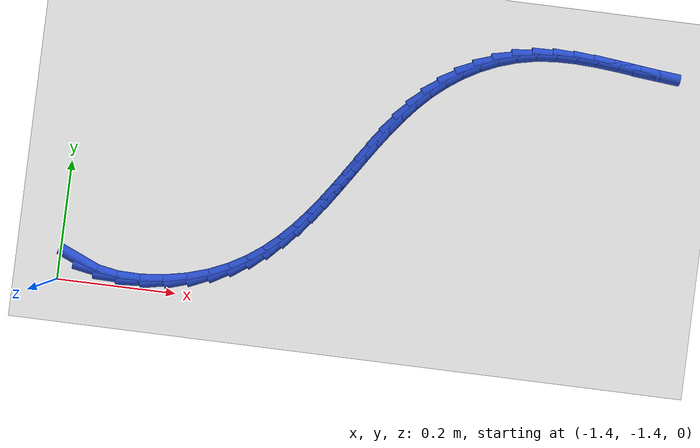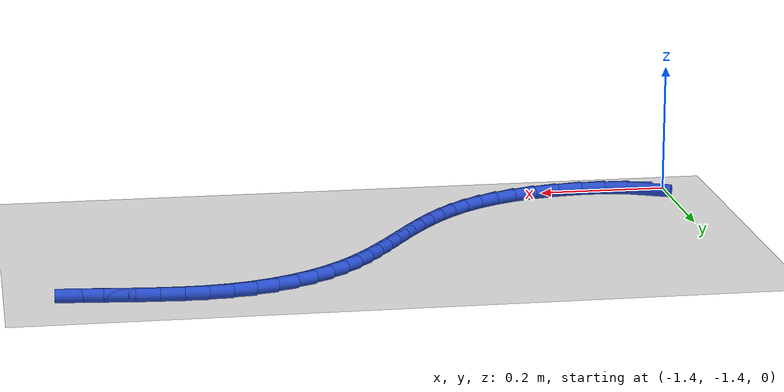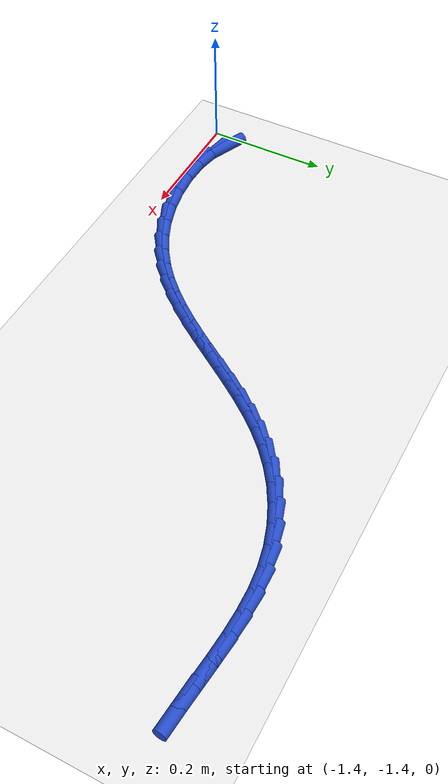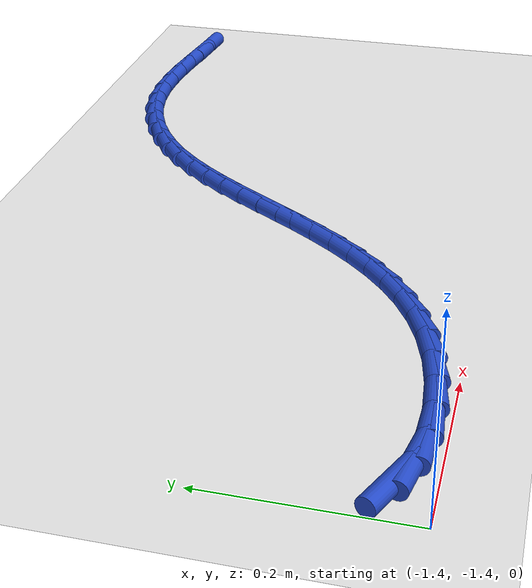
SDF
<sdf version="1.6">
 <world name="default">
  <model name="ground_plane">
   <static>1</static>
   <link name="link">
    <collision name="collision">
     <geometry><plane><normal>0 0 1</normal><size>100 100</size></plane></geometry>
     <surface><friction><ode><mu>100</mu><mu2>50</mu2></ode></friction></surface>
    </collision>
    <visual name="visual">
     <cast_shadows>0</cast_shadows>
     <geometry><plane><normal>0 0 1</normal><size>100 100</size></plane></geometry>
     <material>
      <script><uri>file://media/materials/scripts/gazebo.material</uri><name>Gazebo/WhiteGlow</name></script>
     </material>
    </visual>
   </link>
  </model>
  <model name="line">
   <link name="link_201">
    <pose>-1.3630901503434592 -1.3638697061320793 0.01 0 1.57 -0.4031667102607083</pose>
    <collision name="collision">
     <geometry><cylinder><radius>0.01</radius><length>0.08</length></cylinder></geometry>
    </collision>
    <visual name="visual">
     <material>
      <script><name>Gazebo/Blue</name><uri>file://media/materials/scripts/gazebo.material</uri></script>
     </material>
     <geometry><cylinder><radius>0.01</radius><length>0.08</length></cylinder></geometry>
    </visual>
   </link>
   <link name="link_202">
    <pose>-1.3343878084564367 -1.3761121449590048 0.01 0 1.57 -0.1751403704983456</pose>
    <collision name="collision">
     <geometry><cylinder><radius>0.01</radius><length>0.08</length></cylinder></geometry>
    </collision>
    <visual name="visual">
     <material>
      <script><name>Gazebo/Blue</name><uri>file://media/materials/scripts/gazebo.material</uri></script>
     </material>
     <geometry><cylinder><radius>0.01</radius><length>0.08</length></cylinder></geometry>
    </visual>
   </link>
   <link name="link_203">
    <pose>-1.2994607208328666 -1.3822926111460065 0.01 0 1.57 -0.020632780937613112</pose>
    <collision name="collision">
     <geometry><cylinder><radius>0.01</radius><length>0.08</length></cylinder></geometry>
    </collision>
    <visual name="visual">
     <material>
      <script><name>Gazebo/Blue</name><uri>file://media/materials/scripts/gazebo.material</uri></script>
     </material>
     <geometry><cylinder><radius>0.01</radius><length>0.08</length></cylinder></geometry>
    </visual>
   </link>
   <link name="link_204">
    <pose>-1.2607427728961045 -1.383091583464632 0.01 0 1.57 0.09706272305757051</pose>
    <collision name="collision">
     <geometry><cylinder><radius>0.01</radius><length>0.08</length></cylinder></geometry>
    </collision>
    <visual name="visual">
     <material>
      <script><name>Gazebo/Blue</name><uri>file://media/materials/scripts/gazebo.material</uri></script>
     </material>
     <geometry><cylinder><radius>0.01</radius><length>0.08</length></cylinder></geometry>
    </visual>
   </link>
   <link name="link_205">
    <pose>-1.220667850069504 -1.3791895406864254 0.01 0 1.57 0.20042583603466674</pose>
    <collision name="collision">
     <geometry><cylinder><radius>0.01</radius><length>0.08</length></cylinder></geometry>
    </collision>
    <visual name="visual">
     <material>
      <script><name>Gazebo/Blue</name><uri>file://media/materials/scripts/gazebo.material</uri></script>
     </material>
     <geometry><cylinder><radius>0.01</radius><length>0.08</length></cylinder></geometry>
    </visual>
   </link>
   <link name="link_206">
    <pose>-1.1816698377764232 -1.3712669615829334 0.01 0 1.57 0.30569391271122764</pose>
    <collision name="collision">
     <geometry><cylinder><radius>0.01</radius><length>0.08</length></cylinder></geometry>
    </collision>
    <visual name="visual">
     <material>
      <script><name>Gazebo/Blue</name><uri>file://media/materials/scripts/gazebo.material</uri></script>
     </material>
     <geometry><cylinder><radius>0.01</radius><length>0.08</length></cylinder></geometry>
    </visual>
   </link>
   <link name="link_207">
    <pose>-1.1458438031999547 -1.359960763688977 0.01 0 1.57 0.41542654613344265</pose>
    <collision name="collision">
     <geometry><cylinder><radius>0.01</radius><length>0.08</length></cylinder></geometry>
    </collision>
    <visual name="visual">
     <material>
      <script><name>Gazebo/Blue</name><uri>file://media/materials/scripts/gazebo.material</uri></script>
     </material>
     <geometry><cylinder><radius>0.01</radius><length>0.08</length></cylinder></geometry>
    </visual>
   </link>
   <link name="link_208">
    <pose>-1.1134501580478247 -1.3456719862661 0.01 0 1.57 0.5241736429138806</pose>
    <collision name="collision">
     <geometry><cylinder><radius>0.01</radius><length>0.08</length></cylinder></geometry>
    </collision>
    <visual name="visual">
     <material>
      <script><name>Gazebo/Blue</name><uri>file://media/materials/scripts/gazebo.material</uri></script>
     </material>
     <geometry><cylinder><radius>0.01</radius><length>0.08</length></cylinder></geometry>
    </visual>
   </link>
   <link name="link_209">
    <pose>-1.084131202211549 -1.3287221990787865 0.01 0 1.57 0.6273702994922504</pose>
    <collision name="collision">
     <geometry><cylinder><radius>0.01</radius><length>0.08</length></cylinder></geometry>
    </collision>
    <visual name="visual">
     <material>
      <script><name>Gazebo/Blue</name><uri>file://media/materials/scripts/gazebo.material</uri></script>
     </material>
     <geometry><cylinder><radius>0.01</radius><length>0.08</length></cylinder></geometry>
    </visual>
   </link>
   <link name="link_210">
    <pose>-1.0575287650760632 -1.3094329113993586 0.01 0 1.57 0.7210147814525111</pose>
    <collision name="collision">
     <geometry><cylinder><radius>0.01</radius><length>0.08</length></cylinder></geometry>
    </collision>
    <visual name="visual">
     <material>
      <script><name>Gazebo/Blue</name><uri>file://media/materials/scripts/gazebo.material</uri></script>
     </material>
     <geometry><cylinder><radius>0.01</radius><length>0.08</length></cylinder></geometry>
    </visual>
   </link>
   <link name="link_211">
    <pose>-1.0332846760262997 -1.2881256325001373 0.01 0 1.57 0.8021896978768858</pose>
    <collision name="collision">
     <geometry><cylinder><radius>0.01</radius><length>0.08</length></cylinder></geometry>
    </collision>
    <visual name="visual">
     <material>
      <script><name>Gazebo/Blue</name><uri>file://media/materials/scripts/gazebo.material</uri></script>
     </material>
     <geometry><cylinder><radius>0.01</radius><length>0.08</length></cylinder></geometry>
    </visual>
   </link>
   <link name="link_212">
    <pose>-1.011040764447194 -1.265121871653444 0.01 0 1.57 0.8691673241811841</pose>
    <collision name="collision">
     <geometry><cylinder><radius>0.01</radius><length>0.08</length></cylinder></geometry>
    </collision>
    <visual name="visual">
     <material>
      <script><name>Gazebo/Blue</name><uri>file://media/materials/scripts/gazebo.material</uri></script>
     </material>
     <geometry><cylinder><radius>0.01</radius><length>0.08</length></cylinder></geometry>
    </visual>
   </link>
   <link name="link_213">
    <pose>-0.9904388597236785 -1.2407431381315994 0.01 0 1.57 0.9211851683523427</pose>
    <collision name="collision">
     <geometry><cylinder><radius>0.01</radius><length>0.08</length></cylinder></geometry>
    </collision>
    <visual name="visual">
     <material>
      <script><name>Gazebo/Blue</name><uri>file://media/materials/scripts/gazebo.material</uri></script>
     </material>
     <geometry><cylinder><radius>0.01</radius><length>0.08</length></cylinder></geometry>
    </visual>
   </link>
   <link name="link_214">
    <pose>-0.9711207912406883 -1.215310941206925 0.01 0 1.57 0.9580852360317823</pose>
    <collision name="collision">
     <geometry><cylinder><radius>0.01</radius><length>0.08</length></cylinder></geometry>
    </collision>
    <visual name="visual">
     <material>
      <script><name>Gazebo/Blue</name><uri>file://media/materials/scripts/gazebo.material</uri></script>
     </material>
     <geometry><cylinder><radius>0.01</radius><length>0.08</length></cylinder></geometry>
    </visual>
   </link>
   <link name="link_215">
    <pose>-0.9527283883831569 -1.1891467901517419 0.01 0 1.57 0.9799721865948829</pose>
    <collision name="collision">
     <geometry><cylinder><radius>0.01</radius><length>0.08</length></cylinder></geometry>
    </collision>
    <visual name="visual">
     <material>
      <script><name>Gazebo/Blue</name><uri>file://media/materials/scripts/gazebo.material</uri></script>
     </material>
     <geometry><cylinder><radius>0.01</radius><length>0.08</length></cylinder></geometry>
    </visual>
   </link>
   <link name="link_216">
    <pose>-0.9349034805360176 -1.1625721942383707 0.01 0 1.57 0.9869622922317544</pose>
    <collision name="collision">
     <geometry><cylinder><radius>0.01</radius><length>0.08</length></cylinder></geometry>
    </collision>
    <visual name="visual">
     <material>
      <script><name>Gazebo/Blue</name><uri>file://media/materials/scripts/gazebo.material</uri></script>
     </material>
     <geometry><cylinder><radius>0.01</radius><length>0.08</length></cylinder></geometry>
    </visual>
   </link>
   <link name="link_217">
    <pose>-0.9172878970842056 -1.135908662739134 0.01 0 1.57 0.9790368442214583</pose>
    <collision name="collision">
     <geometry><cylinder><radius>0.01</radius><length>0.08</length></cylinder></geometry>
    </collision>
    <visual name="visual">
     <material>
      <script><name>Gazebo/Blue</name><uri>file://media/materials/scripts/gazebo.material</uri></script>
     </material>
     <geometry><cylinder><radius>0.01</radius><length>0.08</length></cylinder></geometry>
    </visual>
   </link>
   <link name="link_218">
    <pose>-0.8995234674126531 -1.1094777049263507 0.01 0 1.57 0.9559936640766555</pose>
    <collision name="collision">
     <geometry><cylinder><radius>0.01</radius><length>0.08</length></cylinder></geometry>
    </collision>
    <visual name="visual">
     <material>
      <script><name>Gazebo/Blue</name><uri>file://media/materials/scripts/gazebo.material</uri></script>
     </material>
     <geometry><cylinder><radius>0.01</radius><length>0.08</length></cylinder></geometry>
    </visual>
   </link>
   <link name="link_219">
    <pose>-0.8812520209062955 -1.083600830072344 0.01 0 1.57 0.917495400614432</pose>
    <collision name="collision">
     <geometry><cylinder><radius>0.01</radius><length>0.08</length></cylinder></geometry>
    </collision>
    <visual name="visual">
     <material>
      <script><name>Gazebo/Blue</name><uri>file://media/materials/scripts/gazebo.material</uri></script>
     </material>
     <geometry><cylinder><radius>0.01</radius><length>0.08</length></cylinder></geometry>
    </visual>
   </link>
   <link name="link_220">
    <pose>-0.8621153869500661 -1.058599547449434 0.01 0 1.57 0.8632266815567523</pose>
    <collision name="collision">
     <geometry><cylinder><radius>0.01</radius><length>0.08</length></cylinder></geometry>
    </collision>
    <visual name="visual">
     <material>
      <script><name>Gazebo/Blue</name><uri>file://media/materials/scripts/gazebo.material</uri></script>
     </material>
     <geometry><cylinder><radius>0.01</radius><length>0.08</length></cylinder></geometry>
    </visual>
   </link>
   <link name="link_221">
    <pose>-0.8417553949288992 -1.034795366329943 0.01 0 1.57 0.7931771670490835</pose>
    <collision name="collision">
     <geometry><cylinder><radius>0.01</radius><length>0.08</length></cylinder></geometry>
    </collision>
    <visual name="visual">
     <material>
      <script><name>Gazebo/Blue</name><uri>file://media/materials/scripts/gazebo.material</uri></script>
     </material>
     <geometry><cylinder><radius>0.01</radius><length>0.08</length></cylinder></geometry>
    </visual>
   </link>
   <link name="link_222">
    <pose>-0.8198138742277279 -1.0125097959861904 0.01 0 1.57 0.7082936814916077</pose>
    <collision name="collision">
     <geometry><cylinder><radius>0.01</radius><length>0.08</length></cylinder></geometry>
    </collision>
    <visual name="visual">
     <material>
      <script><name>Gazebo/Blue</name><uri>file://media/materials/scripts/gazebo.material</uri></script>
     </material>
     <geometry><cylinder><radius>0.01</radius><length>0.08</length></cylinder></geometry>
    </visual>
   </link>
   <link name="link_223">
    <pose>-0.7959437820969634 -0.9920634847737256 0.01 0 1.57 0.6154847410870234</pose>
    <collision name="collision">
     <geometry><cylinder><radius>0.01</radius><length>0.08</length></cylinder></geometry>
    </collision>
    <visual name="visual">
     <material>
      <script><name>Gazebo/Blue</name><uri>file://media/materials/scripts/gazebo.material</uri></script>
     </material>
     <geometry><cylinder><radius>0.01</radius><length>0.08</length></cylinder></geometry>
    </visual>
   </link>
   <link name="link_224">
    <pose>-0.7700550610812513 -0.9737571991623281 0.01 0 1.57 0.5200718488743716</pose>
    <collision name="collision">
     <geometry><cylinder><radius>0.01</radius><length>0.08</length></cylinder></geometry>
    </collision>
    <visual name="visual">
     <material>
      <script><name>Gazebo/Blue</name><uri>file://media/materials/scripts/gazebo.material</uri></script>
     </material>
     <geometry><cylinder><radius>0.01</radius><length>0.08</length></cylinder></geometry>
    </visual>
   </link>
   <link name="link_225">
    <pose>-0.7423152205777923 -0.957871778743256 0.01 0 1.57 0.4214136400182426</pose>
    <collision name="collision">
     <geometry><cylinder><radius>0.01</radius><length>0.08</length></cylinder></geometry>
    </collision>
    <visual name="visual">
     <material>
      <script><name>Gazebo/Blue</name><uri>file://media/materials/scripts/gazebo.material</uri></script>
     </material>
     <geometry><cylinder><radius>0.01</radius><length>0.08</length></cylinder></geometry>
    </visual>
   </link>
   <link name="link_226">
    <pose>-0.7129030141611108 -0.9446871931924287 0.01 0 1.57 0.31888938657900145</pose>
    <collision name="collision">
     <geometry><cylinder><radius>0.01</radius><length>0.08</length></cylinder></geometry>
    </collision>
    <visual name="visual">
     <material>
      <script><name>Gazebo/Blue</name><uri>file://media/materials/scripts/gazebo.material</uri></script>
     </material>
     <geometry><cylinder><radius>0.01</radius><length>0.08</length></cylinder></geometry>
    </visual>
   </link>
   <link name="link_227">
    <pose>-0.6819971954057313 -0.9344834121857658 0.01 0 1.57 0.21223773042530286</pose>
    <collision name="collision">
     <geometry><cylinder><radius>0.01</radius><length>0.08</length></cylinder></geometry>
    </collision>
    <visual name="visual">
     <material>
      <script><name>Gazebo/Blue</name><uri>file://media/materials/scripts/gazebo.material</uri></script>
     </material>
     <geometry><cylinder><radius>0.01</radius><length>0.08</length></cylinder></geometry>
    </visual>
   </link>
   <link name="link_228">
    <pose>-0.6497765178861807 -0.9275404053991875 0.01 0 1.57 0.10587350550050266</pose>
    <collision name="collision">
     <geometry><cylinder><radius>0.01</radius><length>0.08</length></cylinder></geometry>
    </collision>
    <visual name="visual">
     <material>
      <script><name>Gazebo/Blue</name><uri>file://media/materials/scripts/gazebo.material</uri></script>
     </material>
     <geometry><cylinder><radius>0.01</radius><length>0.08</length></cylinder></geometry>
    </visual>
   </link>
   <link name="link_229">
    <pose>-0.616443877052804 -0.9239981165584029 0.01 0 1.57 0.019330289288603995</pose>
    <collision name="collision">
     <geometry><cylinder><radius>0.01</radius><length>0.08</length></cylinder></geometry>
    </collision>
    <visual name="visual">
     <material>
      <script><name>Gazebo/Blue</name><uri>file://media/materials/scripts/gazebo.material</uri></script>
     </material>
     <geometry><cylinder><radius>0.01</radius><length>0.08</length></cylinder></geometry>
    </visual>
   </link>
   <link name="link_230">
    <pose>-0.5823156423610236 -0.9233383257276885 0.01 0 1.57 -0.04368362377098528</pose>
    <collision name="collision">
     <geometry><cylinder><radius>0.01</radius><length>0.08</length></cylinder></geometry>
    </collision>
    <visual name="visual">
     <material>
      <script><name>Gazebo/Blue</name><uri>file://media/materials/scripts/gazebo.material</uri></script>
     </material>
     <geometry><cylinder><radius>0.01</radius><length>0.08</length></cylinder></geometry>
    </visual>
   </link>
   <link name="link_231">
    <pose>-0.5477414931716671 -0.9248496112834761 0.01 0 1.57 -0.08548146832235498</pose>
    <collision name="collision">
     <geometry><cylinder><radius>0.01</radius><length>0.08</length></cylinder></geometry>
    </collision>
    <visual name="visual">
     <material>
      <script><name>Gazebo/Blue</name><uri>file://media/materials/scripts/gazebo.material</uri></script>
     </material>
     <geometry><cylinder><radius>0.01</radius><length>0.08</length></cylinder></geometry>
    </visual>
   </link>
   <link name="link_232">
    <pose>-0.5130711132540745 -0.9278205260322934 0.01 0 1.57 -0.1076424224987179</pose>
    <collision name="collision">
     <geometry><cylinder><radius>0.01</radius><length>0.08</length></cylinder></geometry>
    </collision>
    <visual name="visual">
     <material>
      <script><name>Gazebo/Blue</name><uri>file://media/materials/scripts/gazebo.material</uri></script>
     </material>
     <geometry><cylinder><radius>0.01</radius><length>0.08</length></cylinder></geometry>
    </visual>
   </link>
   <link name="link_233">
    <pose>-0.47865418637758184 -0.9315396227806683 0.01 0 1.57 -0.11062052266040849</pose>
    <collision name="collision">
     <geometry><cylinder><radius>0.01</radius><length>0.08</length></cylinder></geometry>
    </collision>
    <visual name="visual">
     <material>
      <script><name>Gazebo/Blue</name><uri>file://media/materials/scripts/gazebo.material</uri></script>
     </material>
     <geometry><cylinder><radius>0.01</radius><length>0.08</length></cylinder></geometry>
    </visual>
   </link>
   <link name="link_234">
    <pose>-0.4448403963115285 -0.9352954543351278 0.01 0 1.57 -0.09348894646387056</pose>
    <collision name="collision">
     <geometry><cylinder><radius>0.01</radius><length>0.08</length></cylinder></geometry>
    </collision>
    <visual name="visual">
     <material>
      <script><name>Gazebo/Blue</name><uri>file://media/materials/scripts/gazebo.material</uri></script>
     </material>
     <geometry><cylinder><radius>0.01</radius><length>0.08</length></cylinder></geometry>
    </visual>
   </link>
  </model>
 </world>
</sdf>
